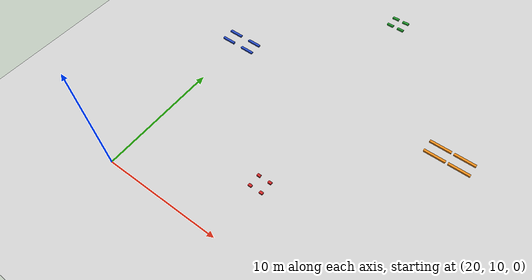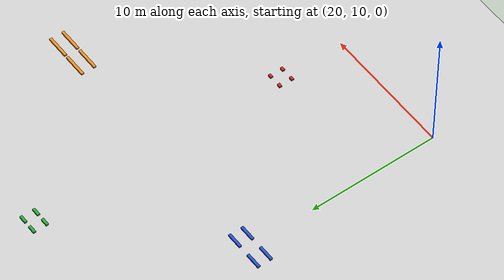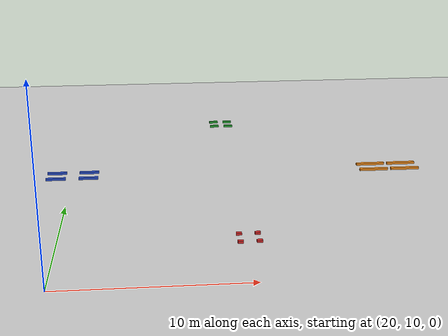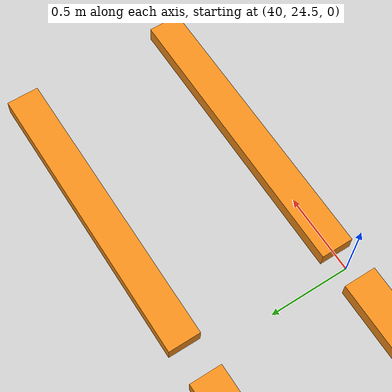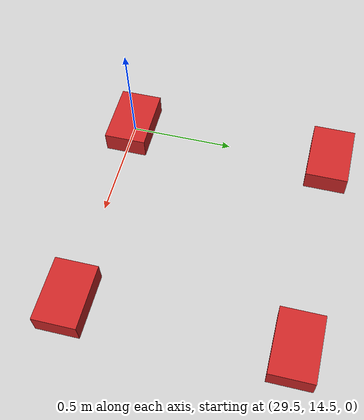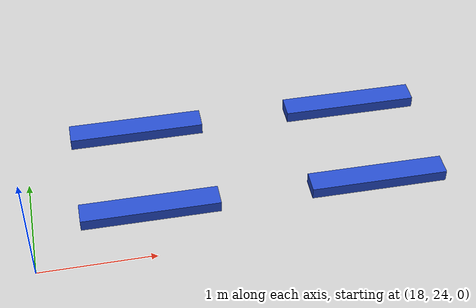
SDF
<?xml version="1.0" ?>
<!-- |    This document was autogenerated by xacro from /home/mbzirc2020/atrv_ws/src/mbzirc2020/mbzirc_gazebo_simulation/challenge_worlds/worlds/challenge2.world.xacro | -->
<!-- |    EDITING THIS FILE BY HAND IS NOT RECOMMENDED                                 | -->
<sdf version="1.4" xmlns:xacro="http://www.ros.org/wiki/xacro">
  <world name="default">
    <!-- GRIPPER PLUGIN TO AVOID THE NEED OF COLLISIONS -->
    <plugin filename="libgazebo_ros_link_attacher.so" name="ros_link_attacher_plugin"/>
    <include>
      <uri>model://sun</uri>
    </include>
    <model name="arena">
      <static>1</static>
      <link name="link">
        <pose>30.0 25.0 0 0 0 0</pose>
        <collision name="collision">
          <geometry>
            <plane>
              <normal>0 0 1</normal>
              <size>100 100</size>
            </plane>
          </geometry>
          <surface>
            <friction>
              <ode>
                <mu>100</mu>
                <mu2>50</mu2>
              </ode>
              <torsional>
                <ode/>
              </torsional>
            </friction>
            <contact>
              <ode/>
            </contact>
            <bounce/>
          </surface>
          <max_contacts>10</max_contacts>
        </collision>
        <visual name="visual">
          <cast_shadows>0</cast_shadows>
          <geometry>
            <plane>
              <normal>0 0 1</normal>
              <size>60 50</size>
            </plane>
          </geometry>
          <material>
            <script>
              <uri>file://materials/mbzirc.material</uri>
              <name>mbzirc/Asfalt</name>
            </script>
          </material>
        </visual>
        <self_collide>0</self_collide>
        <kinematic>0</kinematic>
        <gravity>1</gravity>
      </link>
    </model>
    <model name="Red_brick_01">
      <link name="Red_brick_01_link">
        <pose>30.5 14.5 0 0 0 0</pose>
        <inertial>
          <mass>1.0</mass>
          <inertia>
            <ixx>0.00666666666667</ixx>
            <ixy>0</ixy>
            <ixz>0</ixz>
            <iyy>0.0108333333333</iyy>
            <iyz>0</iyz>
            <izz>0.0108333333333</izz>
          </inertia>
        </inertial>
        <visual name="visual">
          <material>
            <script>
              <uri>gazebo.material</uri>
              <name>Gazebo/Red</name>
            </script>
          </material>
          <geometry>
            <box>
              <size>0.3 0.2 0.2</size>
            </box>
          </geometry>
        </visual>
        <collision name="collision">
          <geometry>
            <box>
              <size>0.3 0.2 0.2</size>
            </box>
          </geometry>
        </collision>
      </link>
    </model>
    <model name="Red_brick_02">
      <link name="Red_brick_02_link">
        <pose>29.5 14.5 0 0 0 0</pose>
        <inertial>
          <mass>1.0</mass>
          <inertia>
            <ixx>0.00666666666667</ixx>
            <ixy>0</ixy>
            <ixz>0</ixz>
            <iyy>0.0108333333333</iyy>
            <iyz>0</iyz>
            <izz>0.0108333333333</izz>
          </inertia>
        </inertial>
        <visual name="visual">
          <material>
            <script>
              <uri>gazebo.material</uri>
              <name>Gazebo/Red</name>
            </script>
          </material>
          <geometry>
            <box>
              <size>0.3 0.2 0.2</size>
            </box>
          </geometry>
        </visual>
        <collision name="collision">
          <geometry>
            <box>
              <size>0.3 0.2 0.2</size>
            </box>
          </geometry>
        </collision>
      </link>
    </model>
    <model name="Red_brick_03">
      <link name="Red_brick_03_link">
        <pose>29.5 15.5 0 0 0 0</pose>
        <inertial>
          <mass>1.0</mass>
          <inertia>
            <ixx>0.00666666666667</ixx>
            <ixy>0</ixy>
            <ixz>0</ixz>
            <iyy>0.0108333333333</iyy>
            <iyz>0</iyz>
            <izz>0.0108333333333</izz>
          </inertia>
        </inertial>
        <visual name="visual">
          <material>
            <script>
              <uri>gazebo.material</uri>
              <name>Gazebo/Red</name>
            </script>
          </material>
          <geometry>
            <box>
              <size>0.3 0.2 0.2</size>
            </box>
          </geometry>
        </visual>
        <collision name="collision">
          <geometry>
            <box>
              <size>0.3 0.2 0.2</size>
            </box>
          </geometry>
        </collision>
      </link>
    </model>
    <model name="Red_brick_04">
      <link name="Red_brick_04_link">
        <pose>30.5 15.5 0 0 0 0</pose>
        <inertial>
          <mass>1.0</mass>
          <inertia>
            <ixx>0.00666666666667</ixx>
            <ixy>0</ixy>
            <ixz>0</ixz>
            <iyy>0.0108333333333</iyy>
            <iyz>0</iyz>
            <izz>0.0108333333333</izz>
          </inertia>
        </inertial>
        <visual name="visual">
          <material>
            <script>
              <uri>gazebo.material</uri>
              <name>Gazebo/Red</name>
            </script>
          </material>
          <geometry>
            <box>
              <size>0.3 0.2 0.2</size>
            </box>
          </geometry>
        </visual>
        <collision name="collision">
          <geometry>
            <box>
              <size>0.3 0.2 0.2</size>
            </box>
          </geometry>
        </collision>
      </link>
    </model>
    <model name="Blue_brick_01">
      <link name="Blue_brick_01_link">
        <pose>19.0 25.5 0 0 0 0</pose>
        <inertial>
          <mass>1.0</mass>
          <inertia>
            <ixx>0.00666666666667</ixx>
            <ixy>0</ixy>
            <ixz>0</ixz>
            <iyy>0.123333333333</iyy>
            <iyz>0</iyz>
            <izz>0.123333333333</izz>
          </inertia>
        </inertial>
        <visual name="visual">
          <material>
            <script>
              <uri>gazebo.material</uri>
              <name>Gazebo/Blue</name>
            </script>
          </material>
          <geometry>
            <box>
              <size>1.2 0.2 0.2</size>
            </box>
          </geometry>
        </visual>
        <collision name="collision">
          <geometry>
            <box>
              <size>1.2 0.2 0.2</size>
            </box>
          </geometry>
        </collision>
      </link>
    </model>
    <model name="Blue_brick_02">
      <link name="Blue_brick_02_link">
        <pose>19.0 24.5 0 0 0 0</pose>
        <inertial>
          <mass>1.0</mass>
          <inertia>
            <ixx>0.00666666666667</ixx>
            <ixy>0</ixy>
            <ixz>0</ixz>
            <iyy>0.123333333333</iyy>
            <iyz>0</iyz>
            <izz>0.123333333333</izz>
          </inertia>
        </inertial>
        <visual name="visual">
          <material>
            <script>
              <uri>gazebo.material</uri>
              <name>Gazebo/Blue</name>
            </script>
          </material>
          <geometry>
            <box>
              <size>1.2 0.2 0.2</size>
            </box>
          </geometry>
        </visual>
        <collision name="collision">
          <geometry>
            <box>
              <size>1.2 0.2 0.2</size>
            </box>
          </geometry>
        </collision>
      </link>
    </model>
    <model name="Blue_brick_03">
      <link name="Blue_brick_03_link">
        <pose>21.0 25.5 0 0 0 0</pose>
        <inertial>
          <mass>1.0</mass>
          <inertia>
            <ixx>0.00666666666667</ixx>
            <ixy>0</ixy>
            <ixz>0</ixz>
            <iyy>0.123333333333</iyy>
            <iyz>0</iyz>
            <izz>0.123333333333</izz>
          </inertia>
        </inertial>
        <visual name="visual">
          <material>
            <script>
              <uri>gazebo.material</uri>
              <name>Gazebo/Blue</name>
            </script>
          </material>
          <geometry>
            <box>
              <size>1.2 0.2 0.2</size>
            </box>
          </geometry>
        </visual>
        <collision name="collision">
          <geometry>
            <box>
              <size>1.2 0.2 0.2</size>
            </box>
          </geometry>
        </collision>
      </link>
    </model>
    <model name="Blue_brick_04">
      <link name="Blue_brick_04_link">
        <pose>21.0 24.5 0 0 0 0</pose>
        <inertial>
          <mass>1.0</mass>
          <inertia>
            <ixx>0.00666666666667</ixx>
            <ixy>0</ixy>
            <ixz>0</ixz>
            <iyy>0.123333333333</iyy>
            <iyz>0</iyz>
            <izz>0.123333333333</izz>
          </inertia>
        </inertial>
        <visual name="visual">
          <material>
            <script>
              <uri>gazebo.material</uri>
              <name>Gazebo/Blue</name>
            </script>
          </material>
          <geometry>
            <box>
              <size>1.2 0.2 0.2</size>
            </box>
          </geometry>
        </visual>
        <collision name="collision">
          <geometry>
            <box>
              <size>1.2 0.2 0.2</size>
            </box>
          </geometry>
        </collision>
      </link>
    </model>
    <model name="Green_brick_01">
      <link name="Green_brick_01_link">
        <pose>30.5 35.5 0 0 0 0</pose>
        <inertial>
          <mass>1.0</mass>
          <inertia>
            <ixx>0.00666666666667</ixx>
            <ixy>0</ixy>
            <ixz>0</ixz>
            <iyy>0.0333333333333</iyy>
            <iyz>0</iyz>
            <izz>0.0333333333333</izz>
          </inertia>
        </inertial>
        <visual name="visual">
          <material>
            <script>
              <uri>gazebo.material</uri>
              <name>Gazebo/Green</name>
            </script>
          </material>
          <geometry>
            <box>
              <size>0.6 0.2 0.2</size>
            </box>
          </geometry>
        </visual>
        <collision name="collision">
          <geometry>
            <box>
              <size>0.6 0.2 0.2</size>
            </box>
          </geometry>
        </collision>
      </link>
    </model>
    <model name="Green_brick_02">
      <link name="Green_brick_02_link">
        <pose>29.5 35.5 0 0 0 0</pose>
        <inertial>
          <mass>1.0</mass>
          <inertia>
            <ixx>0.00666666666667</ixx>
            <ixy>0</ixy>
            <ixz>0</ixz>
            <iyy>0.0333333333333</iyy>
            <iyz>0</iyz>
            <izz>0.0333333333333</izz>
          </inertia>
        </inertial>
        <visual name="visual">
          <material>
            <script>
              <uri>gazebo.material</uri>
              <name>Gazebo/Green</name>
            </script>
          </material>
          <geometry>
            <box>
              <size>0.6 0.2 0.2</size>
            </box>
          </geometry>
        </visual>
        <collision name="collision">
          <geometry>
            <box>
              <size>0.6 0.2 0.2</size>
            </box>
          </geometry>
        </collision>
      </link>
    </model>
    <model name="Green_brick_03">
      <link name="Green_brick_03_link">
        <pose>30.5 34.5 0 0 0 0</pose>
        <inertial>
          <mass>1.0</mass>
          <inertia>
            <ixx>0.00666666666667</ixx>
            <ixy>0</ixy>
            <ixz>0</ixz>
            <iyy>0.0333333333333</iyy>
            <iyz>0</iyz>
            <izz>0.0333333333333</izz>
          </inertia>
        </inertial>
        <visual name="visual">
          <material>
            <script>
              <uri>gazebo.material</uri>
              <name>Gazebo/Green</name>
            </script>
          </material>
          <geometry>
            <box>
              <size>0.6 0.2 0.2</size>
            </box>
          </geometry>
        </visual>
        <collision name="collision">
          <geometry>
            <box>
              <size>0.6 0.2 0.2</size>
            </box>
          </geometry>
        </collision>
      </link>
    </model>
    <model name="Green_brick_04">
      <link name="Green_brick_04_link">
        <pose>29.5 34.5 0 0 0 0</pose>
        <inertial>
          <mass>1.0</mass>
          <inertia>
            <ixx>0.00666666666667</ixx>
            <ixy>0</ixy>
            <ixz>0</ixz>
            <iyy>0.0333333333333</iyy>
            <iyz>0</iyz>
            <izz>0.0333333333333</izz>
          </inertia>
        </inertial>
        <visual name="visual">
          <material>
            <script>
              <uri>gazebo.material</uri>
              <name>Gazebo/Green</name>
            </script>
          </material>
          <geometry>
            <box>
              <size>0.6 0.2 0.2</size>
            </box>
          </geometry>
        </visual>
        <collision name="collision">
          <geometry>
            <box>
              <size>0.6 0.2 0.2</size>
            </box>
          </geometry>
        </collision>
      </link>
    </model>
    <model name="Orange_brick_01">
      <link name="Orange_brick_01_link">
        <pose>41.0 25.5 0 0 0 0</pose>
        <inertial>
          <mass>1.0</mass>
          <inertia>
            <ixx>0.00666666666667</ixx>
            <ixy>0</ixy>
            <ixz>0</ixz>
            <iyy>0.273333333333</iyy>
            <iyz>0</iyz>
            <izz>0.273333333333</izz>
          </inertia>
        </inertial>
        <visual name="visual">
          <material>
            <script>
              <uri>gazebo.material</uri>
              <name>Gazebo/Orange</name>
            </script>
          </material>
          <geometry>
            <box>
              <size>1.8 0.2 0.2</size>
            </box>
          </geometry>
        </visual>
        <collision name="collision">
          <geometry>
            <box>
              <size>1.8 0.2 0.2</size>
            </box>
          </geometry>
        </collision>
      </link>
    </model>
    <model name="Orange_brick_02">
      <link name="Orange_brick_02_link">
        <pose>41.0 24.5 0 0 0 0</pose>
        <inertial>
          <mass>1.0</mass>
          <inertia>
            <ixx>0.00666666666667</ixx>
            <ixy>0</ixy>
            <ixz>0</ixz>
            <iyy>0.273333333333</iyy>
            <iyz>0</iyz>
            <izz>0.273333333333</izz>
          </inertia>
        </inertial>
        <visual name="visual">
          <material>
            <script>
              <uri>gazebo.material</uri>
              <name>Gazebo/Orange</name>
            </script>
          </material>
          <geometry>
            <box>
              <size>1.8 0.2 0.2</size>
            </box>
          </geometry>
        </visual>
        <collision name="collision">
          <geometry>
            <box>
              <size>1.8 0.2 0.2</size>
            </box>
          </geometry>
        </collision>
      </link>
    </model>
    <model name="Orange_brick_03">
      <link name="Orange_brick_03_link">
        <pose>39.0 25.5 0 0 0 0</pose>
        <inertial>
          <mass>1.0</mass>
          <inertia>
            <ixx>0.00666666666667</ixx>
            <ixy>0</ixy>
            <ixz>0</ixz>
            <iyy>0.273333333333</iyy>
            <iyz>0</iyz>
            <izz>0.273333333333</izz>
          </inertia>
        </inertial>
        <visual name="visual">
          <material>
            <script>
              <uri>gazebo.material</uri>
              <name>Gazebo/Orange</name>
            </script>
          </material>
          <geometry>
            <box>
              <size>1.8 0.2 0.2</size>
            </box>
          </geometry>
        </visual>
        <collision name="collision">
          <geometry>
            <box>
              <size>1.8 0.2 0.2</size>
            </box>
          </geometry>
        </collision>
      </link>
    </model>
    <model name="Orange_brick_04">
      <link name="Orange_brick_04_link">
        <pose>39.0 24.5 0 0 0 0</pose>
        <inertial>
          <mass>1.0</mass>
          <inertia>
            <ixx>0.00666666666667</ixx>
            <ixy>0</ixy>
            <ixz>0</ixz>
            <iyy>0.273333333333</iyy>
            <iyz>0</iyz>
            <izz>0.273333333333</izz>
          </inertia>
        </inertial>
        <visual name="visual">
          <material>
            <script>
              <uri>gazebo.material</uri>
              <name>Gazebo/Orange</name>
            </script>
          </material>
          <geometry>
            <box>
              <size>1.8 0.2 0.2</size>
            </box>
          </geometry>
        </visual>
        <collision name="collision">
          <geometry>
            <box>
              <size>1.8 0.2 0.2</size>
            </box>
          </geometry>
        </collision>
      </link>
    </model>
  </world>
</sdf>
